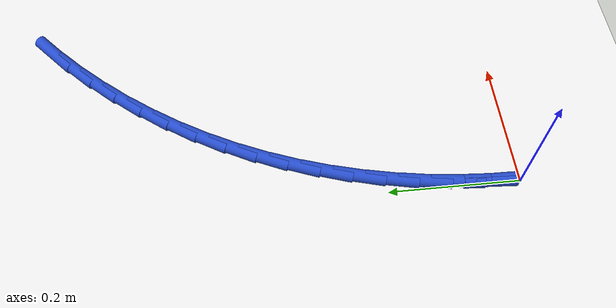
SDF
<sdf version="1.6">
 <world name="default">
  <model name="ground_plane">
   <static>1</static>
   <link name="link">
    <collision name="collision">
     <geometry><plane><normal>0 0 1</normal><size>100 100</size></plane></geometry>
     <surface><friction><ode><mu>100</mu><mu2>50</mu2></ode></friction></surface>
    </collision>
    <visual name="visual">
     <cast_shadows>0</cast_shadows>
     <geometry><plane><normal>0 0 1</normal><size>100 100</size></plane></geometry>
     <material>
      <script><uri>file://media/materials/scripts/gazebo.material</uri><name>Gazebo/WhiteGlow</name></script>
     </material>
    </visual>
   </link>
  </model>
  <model name="line">
   <link name="link_1">
    <pose>0.0008686224491461033 0.04835993437259867 0.01 0 1.57 1.5050240430879447</pose>
    <collision name="collision">
     <geometry><cylinder><radius>0.01</radius><length>0.08</length></cylinder></geometry>
    </collision>
    <visual name="visual">
     <material>
      <script><name>Gazebo/Blue</name><uri>file://media/materials/scripts/gazebo.material</uri></script>
     </material>
     <geometry><cylinder><radius>0.01</radius><length>0.08</length></cylinder></geometry>
    </visual>
   </link>
   <link name="link_2">
    <pose>0.004049572230710496 0.09665324816142548 0.01 0 1.57 1.4565509163530381</pose>
    <collision name="collision">
     <geometry><cylinder><radius>0.01</radius><length>0.08</length></cylinder></geometry>
    </collision>
    <visual name="visual">
     <material>
      <script><name>Gazebo/Blue</name><uri>file://media/materials/scripts/gazebo.material</uri></script>
     </material>
     <geometry><cylinder><radius>0.01</radius><length>0.08</length></cylinder></geometry>
    </visual>
   </link>
   <link name="link_3">
    <pose>0.009568877203612948 0.14475383574577572 0.01 0 1.57 1.4072758542930082</pose>
    <collision name="collision">
     <geometry><cylinder><radius>0.01</radius><length>0.08</length></cylinder></geometry>
    </collision>
    <visual name="visual">
     <material>
      <script><name>Gazebo/Blue</name><uri>file://media/materials/scripts/gazebo.material</uri></script>
     </material>
     <geometry><cylinder><radius>0.01</radius><length>0.08</length></cylinder></geometry>
    </visual>
   </link>
   <link name="link_4">
    <pose>0.01745256522677327 0.19253559150494473 0.01 0 1.57 1.3570687809733968</pose>
    <collision name="collision">
     <geometry><cylinder><radius>0.01</radius><length>0.08</length></cylinder></geometry>
    </collision>
    <visual name="visual">
     <material>
      <script><name>Gazebo/Blue</name><uri>file://media/materials/scripts/gazebo.material</uri></script>
     </material>
     <geometry><cylinder><radius>0.01</radius><length>0.08</length></cylinder></geometry>
    </visual>
   </link>
   <link name="link_5">
    <pose>0.027726664159111285 0.23987240981822772 0.01 0 1.57 1.3058138103631676</pose>
    <collision name="collision">
     <geometry><cylinder><radius>0.01</radius><length>0.08</length></cylinder></geometry>
    </collision>
    <visual name="visual">
     <material>
      <script><name>Gazebo/Blue</name><uri>file://media/materials/scripts/gazebo.material</uri></script>
     </material>
     <geometry><cylinder><radius>0.01</radius><length>0.08</length></cylinder></geometry>
    </visual>
   </link>
   <link name="link_6">
    <pose>0.04041720185954682 0.28663818506492006 0.01 0 1.57 1.253412631626333</pose>
    <collision name="collision">
     <geometry><cylinder><radius>0.01</radius><length>0.08</length></cylinder></geometry>
    </collision>
    <visual name="visual">
     <material>
      <script><name>Gazebo/Blue</name><uri>file://media/materials/scripts/gazebo.material</uri></script>
     </material>
     <geometry><cylinder><radius>0.01</radius><length>0.08</length></cylinder></geometry>
    </visual>
   </link>
   <link name="link_7">
    <pose>0.05555020618699967 0.332706811624317 0.01 0 1.57 1.199788389402016</pose>
    <collision name="collision">
     <geometry><cylinder><radius>0.01</radius><length>0.08</length></cylinder></geometry>
    </collision>
    <visual name="visual">
     <material>
      <script><name>Gazebo/Blue</name><uri>file://media/materials/scripts/gazebo.material</uri></script>
     </material>
     <geometry><cylinder><radius>0.01</radius><length>0.08</length></cylinder></geometry>
    </visual>
   </link>
   <link name="link_8">
    <pose>0.07315170500038967 0.3779521838757138 0.01 0 1.57 1.1448899544182236</pose>
    <collision name="collision">
     <geometry><cylinder><radius>0.01</radius><length>0.08</length></cylinder></geometry>
    </collision>
    <visual name="visual">
     <material>
      <script><name>Gazebo/Blue</name><uri>file://media/materials/scripts/gazebo.material</uri></script>
     </material>
     <geometry><cylinder><radius>0.01</radius><length>0.08</length></cylinder></geometry>
    </visual>
   </link>
   <link name="link_9">
    <pose>0.09324772615863663 0.4222481961984057 0.01 0 1.57 1.088897441915029</pose>
    <collision name="collision">
     <geometry><cylinder><radius>0.01</radius><length>0.08</length></cylinder></geometry>
    </collision>
    <visual name="visual">
     <material>
      <script><name>Gazebo/Blue</name><uri>file://media/materials/scripts/gazebo.material</uri></script>
     </material>
     <geometry><cylinder><radius>0.01</radius><length>0.08</length></cylinder></geometry>
    </visual>
   </link>
   <link name="link_10">
    <pose>0.11585381420771197 0.46546986029225823 0.01 0 1.57 1.033608255612884</pose>
    <collision name="collision">
     <geometry><cylinder><radius>0.01</radius><length>0.08</length></cylinder></geometry>
    </collision>
    <visual name="visual">
     <material>
      <script><name>Gazebo/Blue</name><uri>file://media/materials/scripts/gazebo.material</uri></script>
     </material>
     <geometry><cylinder><radius>0.01</radius><length>0.08</length></cylinder></geometry>
    </visual>
   </link>
   <link name="link_11">
    <pose>0.14088901590209327 0.5075024726752998 0.01 0 1.57 0.9798238435687318</pose>
    <collision name="collision">
     <geometry><cylinder><radius>0.01</radius><length>0.08</length></cylinder></geometry>
    </collision>
    <visual name="visual">
     <material>
      <script><name>Gazebo/Blue</name><uri>file://media/materials/scripts/gazebo.material</uri></script>
     </material>
     <geometry><cylinder><radius>0.01</radius><length>0.08</length></cylinder></geometry>
    </visual>
   </link>
   <link name="link_12">
    <pose>0.16822037318388858 0.5482368725834857 0.01 0 1.57 0.9273157152720111</pose>
    <collision name="collision">
     <geometry><cylinder><radius>0.01</radius><length>0.08</length></cylinder></geometry>
    </collision>
    <visual name="visual">
     <material>
      <script><name>Gazebo/Blue</name><uri>file://media/materials/scripts/gazebo.material</uri></script>
     </material>
     <geometry><cylinder><radius>0.01</radius><length>0.08</length></cylinder></geometry>
    </visual>
   </link>
   <link name="link_13">
    <pose>0.19771442396720645 0.5875639529725115 0.01 0 1.57 0.8758332691027544</pose>
    <collision name="collision">
     <geometry><cylinder><radius>0.01</radius><length>0.08</length></cylinder></geometry>
    </collision>
    <visual name="visual">
     <material>
      <script><name>Gazebo/Blue</name><uri>file://media/materials/scripts/gazebo.material</uri></script>
     </material>
     <geometry><cylinder><radius>0.01</radius><length>0.08</length></cylinder></geometry>
    </visual>
   </link>
   <link name="link_14">
    <pose>0.22923770616615557 0.625374606798073 0.01 0 1.57 0.8251172474438313</pose>
    <collision name="collision">
     <geometry><cylinder><radius>0.01</radius><length>0.08</length></cylinder></geometry>
    </collision>
    <visual name="visual">
     <material>
      <script><name>Gazebo/Blue</name><uri>file://media/materials/scripts/gazebo.material</uri></script>
     </material>
     <geometry><cylinder><radius>0.01</radius><length>0.08</length></cylinder></geometry>
    </visual>
   </link>
   <link name="link_15">
    <pose>0.2626567576948446 0.6615597270158661 0.01 0 1.57 0.7749022123359494</pose>
    <collision name="collision">
     <geometry><cylinder><radius>0.01</radius><length>0.08</length></cylinder></geometry>
    </collision>
    <visual name="visual">
     <material>
      <script><name>Gazebo/Blue</name><uri>file://media/materials/scripts/gazebo.material</uri></script>
     </material>
     <geometry><cylinder><radius>0.01</radius><length>0.08</length></cylinder></geometry>
    </visual>
   </link>
   <link name="link_16">
    <pose>0.29783811646738223 0.6960102065815862 0.01 0 1.57 0.7249180292080372</pose>
    <collision name="collision">
     <geometry><cylinder><radius>0.01</radius><length>0.08</length></cylinder></geometry>
    </collision>
    <visual name="visual">
     <material>
      <script><name>Gazebo/Blue</name><uri>file://media/materials/scripts/gazebo.material</uri></script>
     </material>
     <geometry><cylinder><radius>0.01</radius><length>0.08</length></cylinder></geometry>
    </visual>
   </link>
   <link name="link_141">
    <pose>0.0008664414785779402 0.04836635362595115 0.01 0 1.57 1.5528841058725582</pose>
    <collision name="collision">
     <geometry><cylinder><radius>0.01</radius><length>0.08</length></cylinder></geometry>
    </collision>
    <visual name="visual">
     <material>
      <script><name>Gazebo/Blue</name><uri>file://media/materials/scripts/gazebo.material</uri></script>
     </material>
     <geometry><cylinder><radius>0.01</radius><length>0.08</length></cylinder></geometry>
    </visual>
   </link>
  </model>
 </world>
</sdf>
